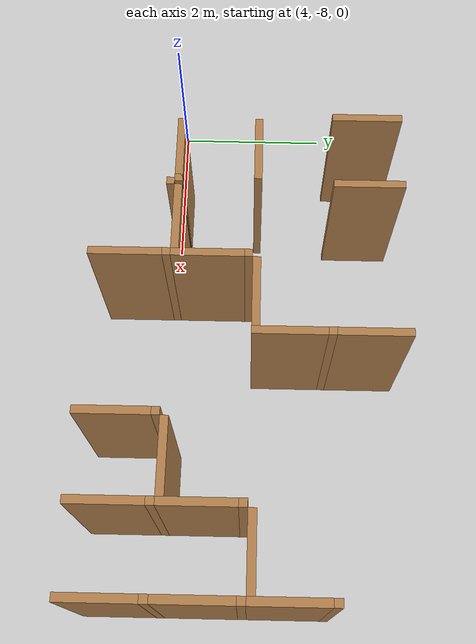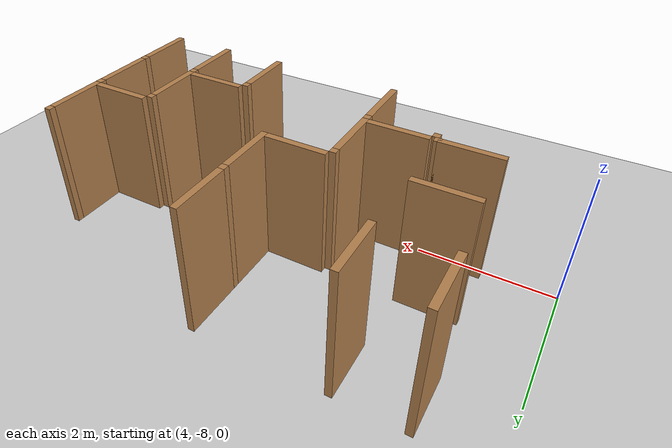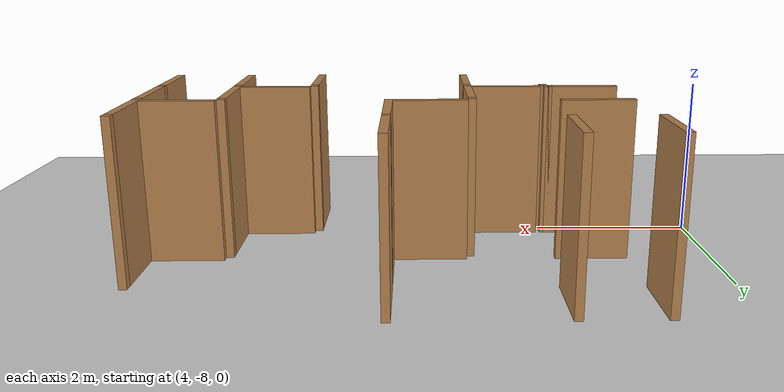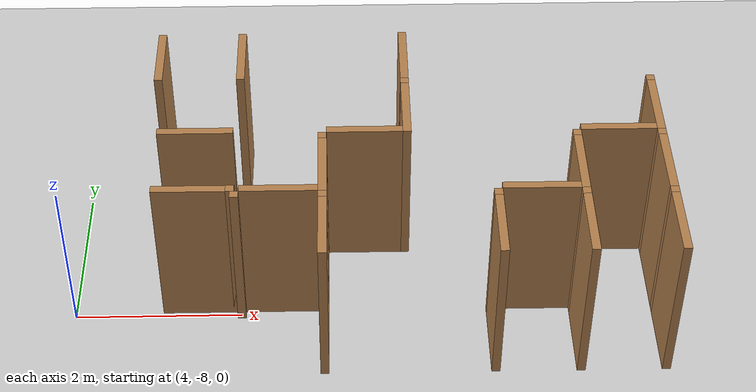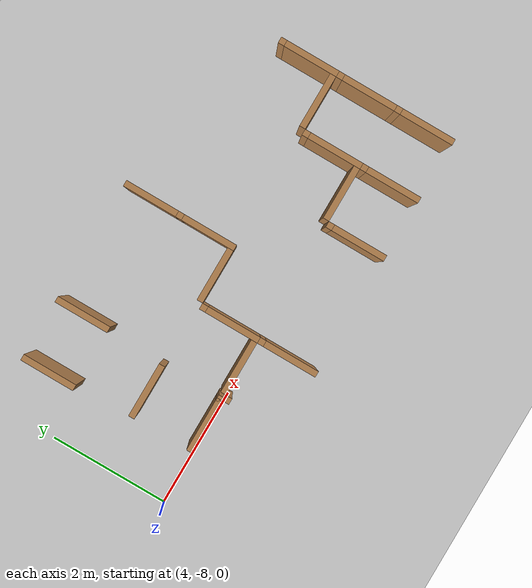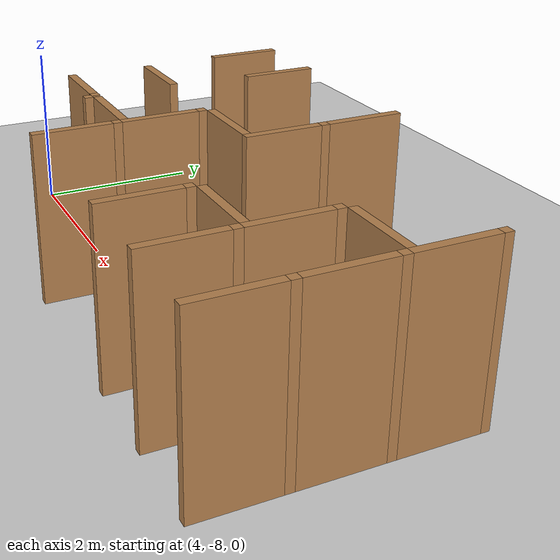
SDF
<sdf version="1.6">
 <world name="default">
  <include><uri>model://sun</uri></include>
  <model name="ground_plane">
   <static>true</static>
   <link name="link">
    <collision name="collision"><geometry><plane><size>12.0 12.0</size></plane></geometry></collision>
    <visual name="visual">
     <cast_shadows>false</cast_shadows>
     <geometry><plane><size>12.0 12.0</size></plane></geometry>
     <material>
      <script><uri>file://media/materials/scripts/gazebo.material</uri><name>Gazebo/Grey</name></script>
     </material>
    </visual>
   </link>
   <pose>6.0 -6.0 0 0 0 0</pose>
  </model>
  <model name="vwall_5_5">
   <pose>5.0 -5.5 1.0 0 0 0</pose>
   <link name="link">
    <collision name="collision"><geometry><box><size>0.1 0.9 2</size></box></geometry></collision>
    <visual name="visual">
     <geometry><box><size>0.1 0.9 2</size></box></geometry>
     <material>
      <script><uri>file://media/materials/scripts/gazebo.material</uri><name>Gazebo/Wood</name></script>
     </material>
    </visual>
   </link>
  </model>
  <model name="vwall_5_6">
   <pose>6.0 -5.5 1.0 0 0 0</pose>
   <link name="link">
    <collision name="collision"><geometry><box><size>0.1 0.9 2</size></box></geometry></collision>
    <visual name="visual">
     <geometry><box><size>0.1 0.9 2</size></box></geometry>
     <material>
      <script><uri>file://media/materials/scripts/gazebo.material</uri><name>Gazebo/Wood</name></script>
     </material>
    </visual>
   </link>
  </model>
  <model name="vwall_5_8">
   <pose>8.0 -5.5 1.0 0 0 0</pose>
   <link name="link">
    <collision name="collision"><geometry><box><size>0.1 0.9 2</size></box></geometry></collision>
    <visual name="visual">
     <geometry><box><size>0.1 0.9 2</size></box></geometry>
     <material>
      <script><uri>file://media/materials/scripts/gazebo.material</uri><name>Gazebo/Wood</name></script>
     </material>
    </visual>
   </link>
  </model>
  <model name="vwall_6_8">
   <pose>8.0 -6.5 1.0 0 0 0</pose>
   <link name="link">
    <collision name="collision"><geometry><box><size>0.1 0.9 2</size></box></geometry></collision>
    <visual name="visual">
     <geometry><box><size>0.1 0.9 2</size></box></geometry>
     <material>
      <script><uri>file://media/materials/scripts/gazebo.material</uri><name>Gazebo/Wood</name></script>
     </material>
    </visual>
   </link>
  </model>
  <model name="joint_8.0_-6.0">
   <pose>8.0 -6.0 1.0 0 0 0</pose>
   <link name="link">
    <collision name="collision"><geometry><box><size>0.1 0.1 2</size></box></geometry></collision>
    <visual name="visual">
     <geometry><box><size>0.1 0.1 2</size></box></geometry>
     <material>
      <script><uri>file://media/materials/scripts/gazebo.material</uri><name>Gazebo/Wood</name></script>
     </material>
    </visual>
   </link>
  </model>
  <model name="vwall_6_11">
   <pose>11.0 -6.5 1.0 0 0 0</pose>
   <link name="link">
    <collision name="collision"><geometry><box><size>0.1 0.9 2</size></box></geometry></collision>
    <visual name="visual">
     <geometry><box><size>0.1 0.9 2</size></box></geometry>
     <material>
      <script><uri>file://media/materials/scripts/gazebo.material</uri><name>Gazebo/Wood</name></script>
     </material>
    </visual>
   </link>
  </model>
  <model name="joint_11.0_-6.0">
   <pose>11.0 -6.0 1.0 0 0 0</pose>
   <link name="link">
    <collision name="collision"><geometry><box><size>0.1 0.1 2</size></box></geometry></collision>
    <visual name="visual">
     <geometry><box><size>0.1 0.1 2</size></box></geometry>
     <material>
      <script><uri>file://media/materials/scripts/gazebo.material</uri><name>Gazebo/Wood</name></script>
     </material>
    </visual>
   </link>
  </model>
  <model name="vwall_7_7">
   <pose>7.0 -7.5 1.0 0 0 0</pose>
   <link name="link">
    <collision name="collision"><geometry><box><size>0.1 0.9 2</size></box></geometry></collision>
    <visual name="visual">
     <geometry><box><size>0.1 0.9 2</size></box></geometry>
     <material>
      <script><uri>file://media/materials/scripts/gazebo.material</uri><name>Gazebo/Wood</name></script>
     </material>
    </visual>
   </link>
  </model>
  <model name="joint_7.0_-7.0">
   <pose>7.0 -7.0 1.0 0 0 0</pose>
   <link name="link">
    <collision name="collision"><geometry><box><size>0.1 0.1 2</size></box></geometry></collision>
    <visual name="visual">
     <geometry><box><size>0.1 0.1 2</size></box></geometry>
     <material>
      <script><uri>file://media/materials/scripts/gazebo.material</uri><name>Gazebo/Wood</name></script>
     </material>
    </visual>
   </link>
  </model>
  <model name="vwall_7_10">
   <pose>10.0 -7.5 1.0 0 0 0</pose>
   <link name="link">
    <collision name="collision"><geometry><box><size>0.1 0.9 2</size></box></geometry></collision>
    <visual name="visual">
     <geometry><box><size>0.1 0.9 2</size></box></geometry>
     <material>
      <script><uri>file://media/materials/scripts/gazebo.material</uri><name>Gazebo/Wood</name></script>
     </material>
    </visual>
   </link>
  </model>
  <model name="joint_10.0_-7.0">
   <pose>10.0 -7.0 1.0 0 0 0</pose>
   <link name="link">
    <collision name="collision"><geometry><box><size>0.1 0.1 2</size></box></geometry></collision>
    <visual name="visual">
     <geometry><box><size>0.1 0.1 2</size></box></geometry>
     <material>
      <script><uri>file://media/materials/scripts/gazebo.material</uri><name>Gazebo/Wood</name></script>
     </material>
    </visual>
   </link>
  </model>
  <model name="vwall_7_11">
   <pose>11.0 -7.5 1.0 0 0 0</pose>
   <link name="link">
    <collision name="collision"><geometry><box><size>0.1 0.9 2</size></box></geometry></collision>
    <visual name="visual">
     <geometry><box><size>0.1 0.9 2</size></box></geometry>
     <material>
      <script><uri>file://media/materials/scripts/gazebo.material</uri><name>Gazebo/Wood</name></script>
     </material>
    </visual>
   </link>
  </model>
  <model name="joint_11.0_-7.0">
   <pose>11.0 -7.0 1.0 0 0 0</pose>
   <link name="link">
    <collision name="collision"><geometry><box><size>0.1 0.1 2</size></box></geometry></collision>
    <visual name="visual">
     <geometry><box><size>0.1 0.1 2</size></box></geometry>
     <material>
      <script><uri>file://media/materials/scripts/gazebo.material</uri><name>Gazebo/Wood</name></script>
     </material>
    </visual>
   </link>
  </model>
  <model name="joint_6.0_-8.0">
   <pose>6.0 -8.0 1.0 0 0 0</pose>
   <link name="link">
    <collision name="collision"><geometry><box><size>0.1 0.1 2</size></box></geometry></collision>
    <visual name="visual">
     <geometry><box><size>0.1 0.1 2</size></box></geometry>
     <material>
      <script><uri>file://media/materials/scripts/gazebo.material</uri><name>Gazebo/Wood</name></script>
     </material>
    </visual>
   </link>
  </model>
  <model name="vwall_8_7">
   <pose>7.0 -8.5 1.0 0 0 0</pose>
   <link name="link">
    <collision name="collision"><geometry><box><size>0.1 0.9 2</size></box></geometry></collision>
    <visual name="visual">
     <geometry><box><size>0.1 0.9 2</size></box></geometry>
     <material>
      <script><uri>file://media/materials/scripts/gazebo.material</uri><name>Gazebo/Wood</name></script>
     </material>
    </visual>
   </link>
  </model>
  <model name="joint_7.0_-8.0">
   <pose>7.0 -8.0 1.0 0 0 0</pose>
   <link name="link">
    <collision name="collision"><geometry><box><size>0.1 0.1 2</size></box></geometry></collision>
    <visual name="visual">
     <geometry><box><size>0.1 0.1 2</size></box></geometry>
     <material>
      <script><uri>file://media/materials/scripts/gazebo.material</uri><name>Gazebo/Wood</name></script>
     </material>
    </visual>
   </link>
  </model>
  <model name="vwall_8_9">
   <pose>9.0 -8.5 1.0 0 0 0</pose>
   <link name="link">
    <collision name="collision"><geometry><box><size>0.1 0.9 2</size></box></geometry></collision>
    <visual name="visual">
     <geometry><box><size>0.1 0.9 2</size></box></geometry>
     <material>
      <script><uri>file://media/materials/scripts/gazebo.material</uri><name>Gazebo/Wood</name></script>
     </material>
    </visual>
   </link>
  </model>
  <model name="joint_9.0_-8.0">
   <pose>9.0 -8.0 1.0 0 0 0</pose>
   <link name="link">
    <collision name="collision"><geometry><box><size>0.1 0.1 2</size></box></geometry></collision>
    <visual name="visual">
     <geometry><box><size>0.1 0.1 2</size></box></geometry>
     <material>
      <script><uri>file://media/materials/scripts/gazebo.material</uri><name>Gazebo/Wood</name></script>
     </material>
    </visual>
   </link>
  </model>
  <model name="vwall_8_10">
   <pose>10.0 -8.5 1.0 0 0 0</pose>
   <link name="link">
    <collision name="collision"><geometry><box><size>0.1 0.9 2</size></box></geometry></collision>
    <visual name="visual">
     <geometry><box><size>0.1 0.9 2</size></box></geometry>
     <material>
      <script><uri>file://media/materials/scripts/gazebo.material</uri><name>Gazebo/Wood</name></script>
     </material>
    </visual>
   </link>
  </model>
  <model name="joint_10.0_-8.0">
   <pose>10.0 -8.0 1.0 0 0 0</pose>
   <link name="link">
    <collision name="collision"><geometry><box><size>0.1 0.1 2</size></box></geometry></collision>
    <visual name="visual">
     <geometry><box><size>0.1 0.1 2</size></box></geometry>
     <material>
      <script><uri>file://media/materials/scripts/gazebo.material</uri><name>Gazebo/Wood</name></script>
     </material>
    </visual>
   </link>
  </model>
  <model name="vwall_8_11">
   <pose>11.0 -8.5 1.0 0 0 0</pose>
   <link name="link">
    <collision name="collision"><geometry><box><size>0.1 0.9 2</size></box></geometry></collision>
    <visual name="visual">
     <geometry><box><size>0.1 0.9 2</size></box></geometry>
     <material>
      <script><uri>file://media/materials/scripts/gazebo.material</uri><name>Gazebo/Wood</name></script>
     </material>
    </visual>
   </link>
  </model>
  <model name="joint_11.0_-8.0">
   <pose>11.0 -8.0 1.0 0 0 0</pose>
   <link name="link">
    <collision name="collision"><geometry><box><size>0.1 0.1 2</size></box></geometry></collision>
    <visual name="visual">
     <geometry><box><size>0.1 0.1 2</size></box></geometry>
     <material>
      <script><uri>file://media/materials/scripts/gazebo.material</uri><name>Gazebo/Wood</name></script>
     </material>
    </visual>
   </link>
  </model>
  <model name="hwall_6_5">
   <pose>5.5 -6.9 1.0 0 0 0</pose>
   <link name="link">
    <collision name="collision"><geometry><box><size>0.9 0.1 2</size></box></geometry></collision>
    <visual name="visual">
     <geometry><box><size>0.9 0.1 2</size></box></geometry>
     <material>
      <script><uri>file://media/materials/scripts/gazebo.material</uri><name>Gazebo/Wood</name></script>
     </material>
    </visual>
   </link>
  </model>
  <model name="hwall_6_7">
   <pose>7.5 -6.9 1.0 0 0 0</pose>
   <link name="link">
    <collision name="collision"><geometry><box><size>0.9 0.1 2</size></box></geometry></collision>
    <visual name="visual">
     <geometry><box><size>0.9 0.1 2</size></box></geometry>
     <material>
      <script><uri>file://media/materials/scripts/gazebo.material</uri><name>Gazebo/Wood</name></script>
     </material>
    </visual>
   </link>
  </model>
  <model name="hwall_6_10">
   <pose>10.5 -6.9 1.0 0 0 0</pose>
   <link name="link">
    <collision name="collision"><geometry><box><size>0.9 0.1 2</size></box></geometry></collision>
    <visual name="visual">
     <geometry><box><size>0.9 0.1 2</size></box></geometry>
     <material>
      <script><uri>file://media/materials/scripts/gazebo.material</uri><name>Gazebo/Wood</name></script>
     </material>
    </visual>
   </link>
  </model>
  <model name="hwall_7_5">
   <pose>5.5 -7.9 1.0 0 0 0</pose>
   <link name="link">
    <collision name="collision"><geometry><box><size>0.9 0.1 2</size></box></geometry></collision>
    <visual name="visual">
     <geometry><box><size>0.9 0.1 2</size></box></geometry>
     <material>
      <script><uri>file://media/materials/scripts/gazebo.material</uri><name>Gazebo/Wood</name></script>
     </material>
    </visual>
   </link>
  </model>
  <model name="joint_5.95_-7.9">
   <pose>5.95 -7.9 1.0 0 0 0</pose>
   <link name="link">
    <collision name="collision"><geometry><box><size>0.1 0.1 2</size></box></geometry></collision>
    <visual name="visual">
     <geometry><box><size>0.1 0.1 2</size></box></geometry>
     <material>
      <script><uri>file://media/materials/scripts/gazebo.material</uri><name>Gazebo/Wood</name></script>
     </material>
    </visual>
   </link>
  </model>
  <model name="hwall_7_6">
   <pose>6.5 -7.9 1.0 0 0 0</pose>
   <link name="link">
    <collision name="collision"><geometry><box><size>0.9 0.1 2</size></box></geometry></collision>
    <visual name="visual">
     <geometry><box><size>0.9 0.1 2</size></box></geometry>
     <material>
      <script><uri>file://media/materials/scripts/gazebo.material</uri><name>Gazebo/Wood</name></script>
     </material>
    </visual>
   </link>
  </model>
  <model name="hwall_7_9">
   <pose>9.5 -7.9 1.0 0 0 0</pose>
   <link name="link">
    <collision name="collision"><geometry><box><size>0.9 0.1 2</size></box></geometry></collision>
    <visual name="visual">
     <geometry><box><size>0.9 0.1 2</size></box></geometry>
     <material>
      <script><uri>file://media/materials/scripts/gazebo.material</uri><name>Gazebo/Wood</name></script>
     </material>
    </visual>
   </link>
  </model>
 </world>
</sdf>
